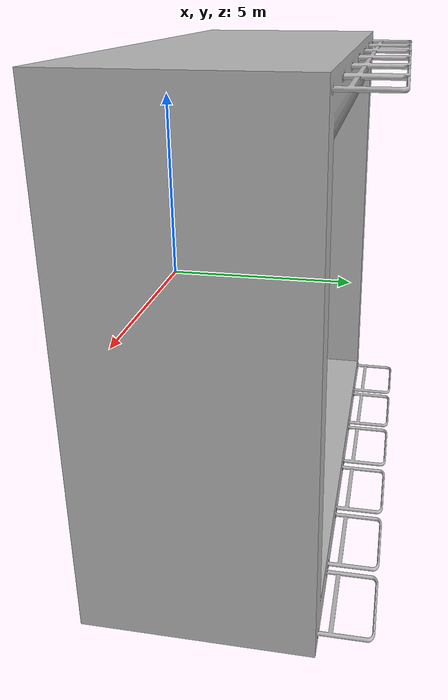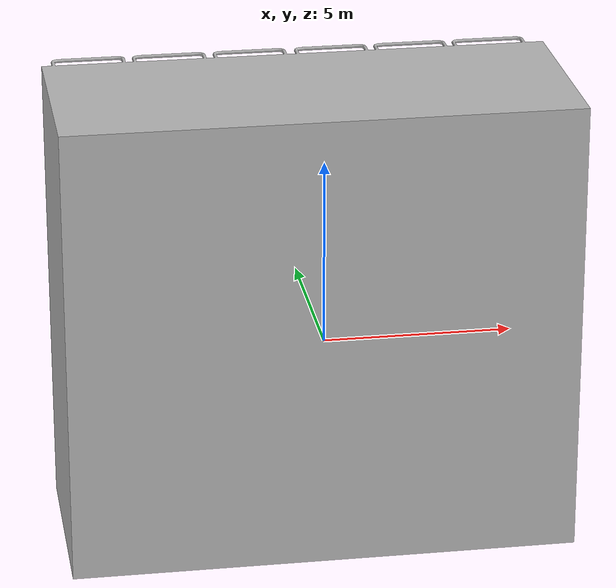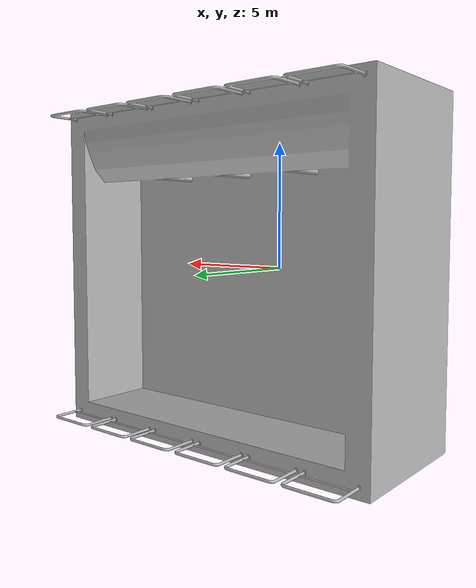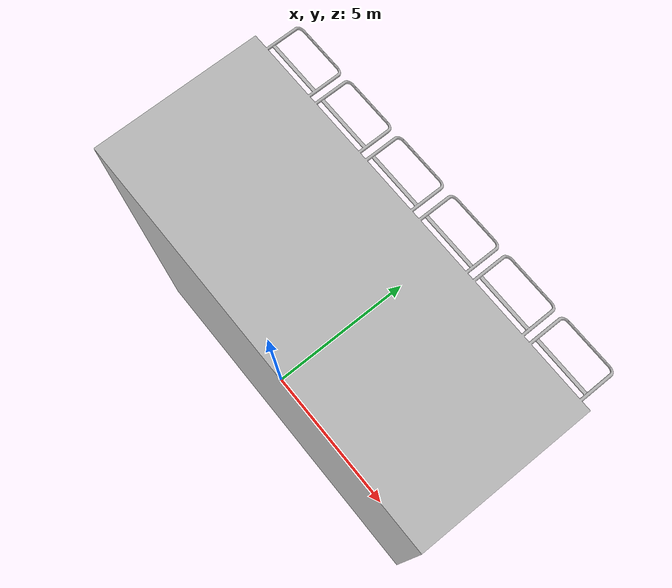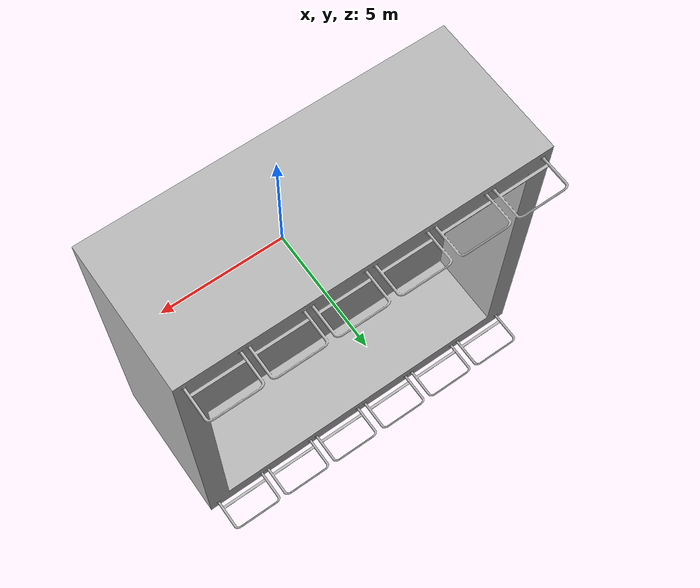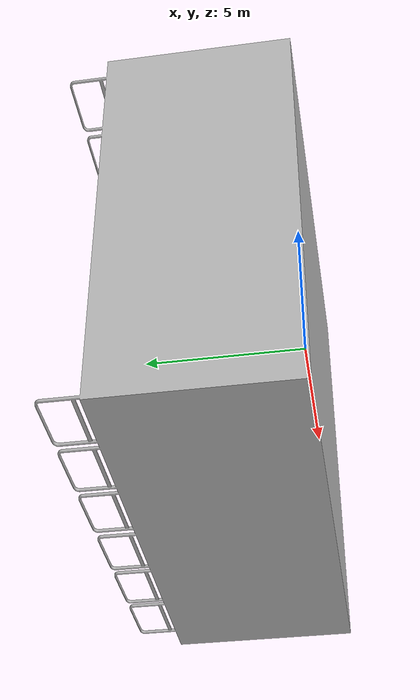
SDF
<?xml version="1.0" ?>
<sdf version="1.5">
<model name="wavetank">
  <static>true</static>
  <link name="wavetank_link">

  <visual name="seafloor">
    <pose>0 0 0 0 0 0</pose>
    <geometry>
      <mesh><uri>model://wavetank/meshes/wavetank.obj</uri><scale>1 1 1</scale></mesh>
    </geometry>
  </visual>

  <collision name="seafloor">
    <pose>0 0 0 0 0 0</pose>
    <geometry>
      <mesh><uri>model://wavetank/meshes/wavetank.obj</uri><scale>1 1 1</scale></mesh>
    </geometry>
  </collision>

  </link>
</model>
</sdf>
